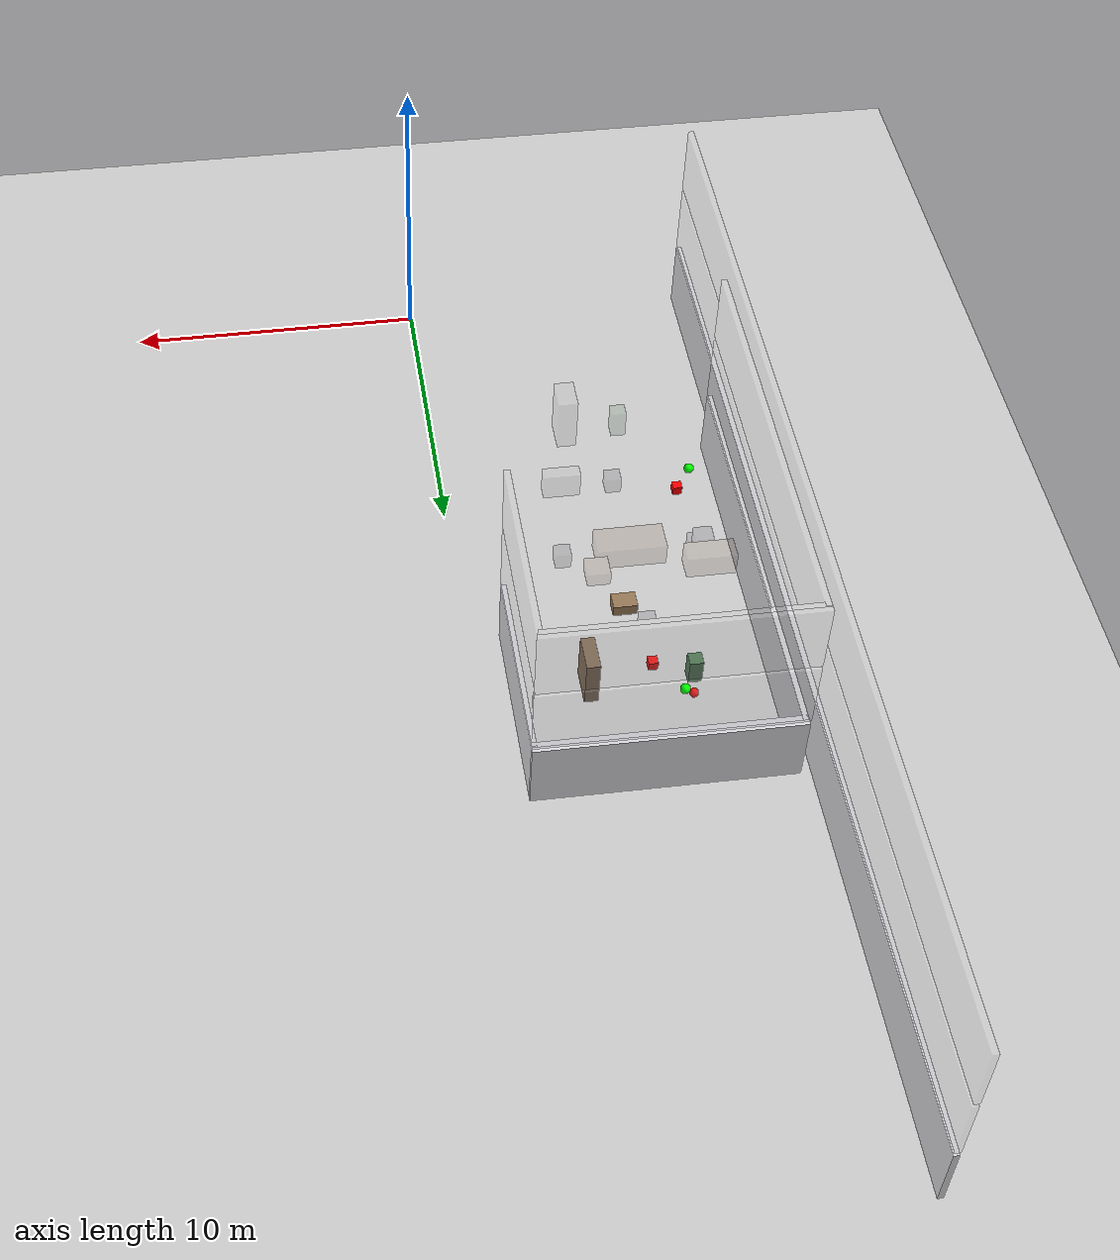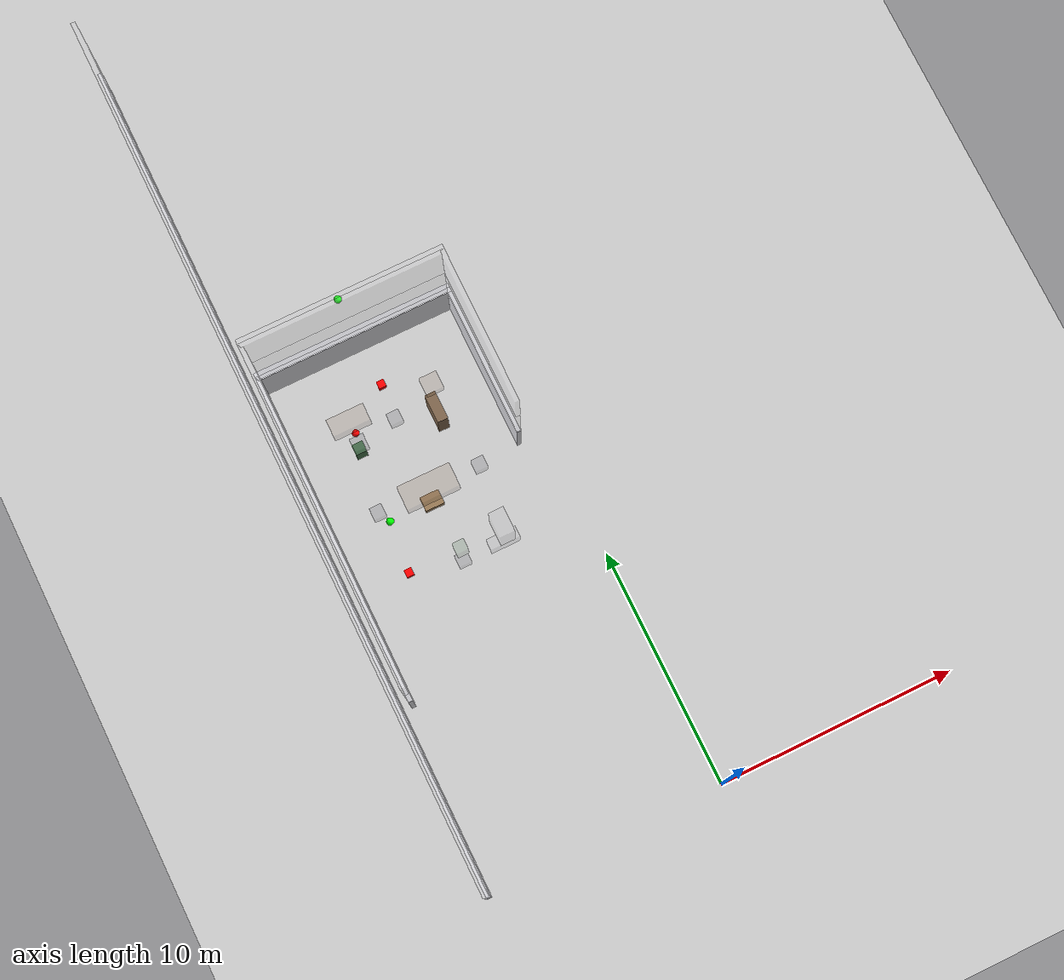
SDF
<sdf version="1.7">
 <world name="generated_world">
  <include><uri>model://sun</uri></include>
  <include><uri>model://ground_plane</uri></include>
  <model name="generated_building">
   <static>true</static>
   <link name="exterior_west_floor_0">
    <pose>-9.9100 18.0000 1.2250 0.0000 0.0000 0.0000</pose>
    <collision name="exterior_west_floor_0_collision">
     <geometry><box><size>0.1800 36.0000 2.4500</size></box></geometry>
    </collision>
    <visual name="exterior_west_floor_0_visual">
     <geometry><box><size>0.1800 36.0000 2.4500</size></box></geometry>
     <material><ambient>0.86 0.86 0.88 1</ambient><diffuse>0.86 0.86 0.88 1</diffuse></material>
    </visual>
    <gravity>false</gravity>
   </link>
   <link name="floor_0_room_0_corridor_wall_upper">
    <pose>-1.1900 18.6725 1.2250 0.0000 0.0000 0.0000</pose>
    <collision name="floor_0_room_0_corridor_wall_upper_collision">
     <geometry><box><size>0.1800 6.4150 2.4500</size></box></geometry>
    </collision>
    <visual name="floor_0_room_0_corridor_wall_upper_visual">
     <geometry><box><size>0.1800 6.4150 2.4500</size></box></geometry>
     <material><ambient>0.86 0.86 0.88 1</ambient><diffuse>0.86 0.86 0.88 1</diffuse></material>
    </visual>
    <gravity>false</gravity>
   </link>
   <link name="floor_0_room_0_west_wall">
    <pose>-9.4100 14.8650 1.2250 0.0000 0.0000 0.0000</pose>
    <collision name="floor_0_room_0_west_wall_collision">
     <geometry><box><size>0.1800 14.0300 2.4500</size></box></geometry>
    </collision>
    <visual name="floor_0_room_0_west_wall_visual">
     <geometry><box><size>0.1800 14.0300 2.4500</size></box></geometry>
     <material><ambient>0.86 0.86 0.88 1</ambient><diffuse>0.86 0.86 0.88 1</diffuse></material>
    </visual>
    <gravity>false</gravity>
   </link>
   <link name="floor_0_room_0_north_wall">
    <pose>-5.3000 21.7900 1.2250 0.0000 0.0000 0.0000</pose>
    <collision name="floor_0_room_0_north_wall_collision">
     <geometry><box><size>8.4000 0.1800 2.4500</size></box></geometry>
    </collision>
    <visual name="floor_0_room_0_north_wall_visual">
     <geometry><box><size>8.4000 0.1800 2.4500</size></box></geometry>
     <material><ambient>0.86 0.86 0.88 1</ambient><diffuse>0.86 0.86 0.88 1</diffuse></material>
    </visual>
    <gravity>false</gravity>
   </link>
   <link name="floor_0_room_2_south_wall">
    <pose>-5.3000 21.9700 1.2250 0.0000 0.0000 0.0000</pose>
    <collision name="floor_0_room_2_south_wall_collision">
     <geometry><box><size>8.4000 0.1800 2.4500</size></box></geometry>
    </collision>
    <visual name="floor_0_room_2_south_wall_visual">
     <geometry><box><size>8.4000 0.1800 2.4500</size></box></geometry>
     <material><ambient>0.86 0.86 0.88 1</ambient><diffuse>0.86 0.86 0.88 1</diffuse></material>
    </visual>
    <gravity>false</gravity>
   </link>
   <link name="floor_0_room_0_coffee_table">
    <pose>-5.3000 14.8650 0.2500 0.0000 0.0000 0.0000</pose>
    <collision name="floor_0_room_0_coffee_table_collision">
     <geometry><box><size>0.8000 0.6000 0.4000</size></box></geometry>
    </collision>
    <visual name="floor_0_room_0_coffee_table_visual">
     <geometry><box><size>0.8000 0.6000 0.4000</size></box></geometry>
     <material><ambient>0.60 0.48 0.34 1</ambient><diffuse>0.60 0.48 0.34 1</diffuse></material>
    </visual>
    <gravity>false</gravity>
   </link>
   <link name="floor_0_room_0_bookshelf">
    <pose>-3.6000 17.9225 0.8500 0.0000 0.0000 0.0000</pose>
    <collision name="floor_0_room_0_bookshelf_collision">
     <geometry><box><size>0.4500 1.2000 1.7000</size></box></geometry>
    </collision>
    <visual name="floor_0_room_0_bookshelf_visual">
     <geometry><box><size>0.4500 1.2000 1.7000</size></box></geometry>
     <material><ambient>0.50 0.40 0.30 1</ambient><diffuse>0.50 0.40 0.30 1</diffuse></material>
    </visual>
    <gravity>false</gravity>
   </link>
   <link name="floor_0_room_0_planter">
    <pose>-7.0000 17.9225 0.4500 0.0000 0.0000 0.0000</pose>
    <collision name="floor_0_room_0_planter_collision">
     <geometry><box><size>0.4500 0.4500 0.9000</size></box></geometry>
    </collision>
    <visual name="floor_0_room_0_planter_visual">
     <geometry><box><size>0.4500 0.4500 0.9000</size></box></geometry>
     <material><ambient>0.28 0.46 0.30 1</ambient><diffuse>0.28 0.46 0.30 1</diffuse></material>
    </visual>
    <gravity>false</gravity>
   </link>
   <link name="exterior_west_floor_1">
    <pose>-9.9100 18.0000 3.8250 0.0000 0.0000 0.0000</pose>
    <collision name="exterior_west_floor_1_collision">
     <geometry><box><size>0.1800 36.0000 2.4500</size></box></geometry>
    </collision>
    <visual name="exterior_west_floor_1_visual">
     <geometry><box><size>0.1800 36.0000 2.4500</size></box></geometry>
     <material><ambient>0.86 0.86 0.88 1</ambient><diffuse>0.86 0.86 0.88 1</diffuse></material>
     <transparency>0.80</transparency>
    </visual>
    <gravity>false</gravity>
   </link>
   <link name="floor_1_room_0_corridor_wall_upper">
    <pose>-1.1900 18.6725 3.8250 0.0000 0.0000 0.0000</pose>
    <collision name="floor_1_room_0_corridor_wall_upper_collision">
     <geometry><box><size>0.1800 6.4150 2.4500</size></box></geometry>
    </collision>
    <visual name="floor_1_room_0_corridor_wall_upper_visual">
     <geometry><box><size>0.1800 6.4150 2.4500</size></box></geometry>
     <material><ambient>0.86 0.86 0.88 1</ambient><diffuse>0.86 0.86 0.88 1</diffuse></material>
     <transparency>0.80</transparency>
    </visual>
    <gravity>false</gravity>
   </link>
   <link name="floor_1_room_0_west_wall">
    <pose>-9.4100 14.8650 3.8250 0.0000 0.0000 0.0000</pose>
    <collision name="floor_1_room_0_west_wall_collision">
     <geometry><box><size>0.1800 14.0300 2.4500</size></box></geometry>
    </collision>
    <visual name="floor_1_room_0_west_wall_visual">
     <geometry><box><size>0.1800 14.0300 2.4500</size></box></geometry>
     <material><ambient>0.86 0.86 0.88 1</ambient><diffuse>0.86 0.86 0.88 1</diffuse></material>
     <transparency>0.80</transparency>
    </visual>
    <gravity>false</gravity>
   </link>
   <link name="floor_1_room_0_north_wall">
    <pose>-5.3000 21.7900 3.8250 0.0000 0.0000 0.0000</pose>
    <collision name="floor_1_room_0_north_wall_collision">
     <geometry><box><size>8.4000 0.1800 2.4500</size></box></geometry>
    </collision>
    <visual name="floor_1_room_0_north_wall_visual">
     <geometry><box><size>8.4000 0.1800 2.4500</size></box></geometry>
     <material><ambient>0.86 0.86 0.88 1</ambient><diffuse>0.86 0.86 0.88 1</diffuse></material>
     <transparency>0.80</transparency>
    </visual>
    <gravity>false</gravity>
   </link>
   <link name="floor_1_room_2_south_wall">
    <pose>-5.3000 21.9700 3.8250 0.0000 0.0000 0.0000</pose>
    <collision name="floor_1_room_2_south_wall_collision">
     <geometry><box><size>8.4000 0.1800 2.4500</size></box></geometry>
    </collision>
    <visual name="floor_1_room_2_south_wall_visual">
     <geometry><box><size>8.4000 0.1800 2.4500</size></box></geometry>
     <material><ambient>0.86 0.86 0.88 1</ambient><diffuse>0.86 0.86 0.88 1</diffuse></material>
     <transparency>0.80</transparency>
    </visual>
    <gravity>false</gravity>
   </link>
   <link name="floor_1_room_0_table">
    <pose>-5.3000 14.8650 3.0500 0.0000 0.0000 0.0000</pose>
    <collision name="floor_1_room_0_table_collision">
     <geometry><box><size>2.2000 1.0000 0.7500</size></box></geometry>
    </collision>
    <visual name="floor_1_room_0_table_visual">
     <geometry><box><size>2.2000 1.0000 0.7500</size></box></geometry>
     <material><ambient>0.50 0.38 0.28 1</ambient><diffuse>0.50 0.38 0.28 1</diffuse></material>
     <transparency>0.80</transparency>
    </visual>
    <gravity>false</gravity>
   </link>
   <link name="floor_1_room_0_chair_north">
    <pose>-5.3000 17.9225 2.8800 0.0000 0.0000 0.0000</pose>
    <collision name="floor_1_room_0_chair_north_collision">
     <geometry><box><size>0.5000 0.5000 0.5500</size></box></geometry>
    </collision>
    <visual name="floor_1_room_0_chair_north_visual">
     <geometry><box><size>0.5000 0.5000 0.5500</size></box></geometry>
     <material><ambient>0.30 0.30 0.34 1</ambient><diffuse>0.30 0.30 0.34 1</diffuse></material>
     <transparency>0.80</transparency>
    </visual>
    <gravity>false</gravity>
   </link>
   <link name="floor_1_room_0_chair_south">
    <pose>-5.3000 11.8075 2.8800 0.0000 0.0000 0.0000</pose>
    <collision name="floor_1_room_0_chair_south_collision">
     <geometry><box><size>0.5000 0.5000 0.5500</size></box></geometry>
    </collision>
    <visual name="floor_1_room_0_chair_south_visual">
     <geometry><box><size>0.5000 0.5000 0.5500</size></box></geometry>
     <material><ambient>0.30 0.30 0.34 1</ambient><diffuse>0.30 0.30 0.34 1</diffuse></material>
     <transparency>0.80</transparency>
    </visual>
    <gravity>false</gravity>
   </link>
   <link name="floor_1_room_0_chair_west">
    <pose>-7.4500 14.8650 2.8800 0.0000 0.0000 1.5700</pose>
    <collision name="floor_1_room_0_chair_west_collision">
     <geometry><box><size>0.5000 0.5000 0.5500</size></box></geometry>
    </collision>
    <visual name="floor_1_room_0_chair_west_visual">
     <geometry><box><size>0.5000 0.5000 0.5500</size></box></geometry>
     <material><ambient>0.30 0.30 0.34 1</ambient><diffuse>0.30 0.30 0.34 1</diffuse></material>
     <transparency>0.80</transparency>
    </visual>
    <gravity>false</gravity>
   </link>
   <link name="floor_1_room_0_chair_east">
    <pose>-3.1500 14.8650 2.8800 0.0000 0.0000 1.5700</pose>
    <collision name="floor_1_room_0_chair_east_collision">
     <geometry><box><size>0.5000 0.5000 0.5500</size></box></geometry>
    </collision>
    <visual name="floor_1_room_0_chair_east_visual">
     <geometry><box><size>0.5000 0.5000 0.5500</size></box></geometry>
     <material><ambient>0.30 0.30 0.34 1</ambient><diffuse>0.30 0.30 0.34 1</diffuse></material>
     <transparency>0.80</transparency>
    </visual>
    <gravity>false</gravity>
   </link>
   <link name="floor_1_room_0_credenza">
    <pose>-3.6000 11.8075 3.0500 0.0000 0.0000 0.0000</pose>
    <collision name="floor_1_room_0_credenza_collision">
     <geometry><box><size>1.2000 0.4500 0.9000</size></box></geometry>
    </collision>
    <visual name="floor_1_room_0_credenza_visual">
     <geometry><box><size>1.2000 0.4500 0.9000</size></box></geometry>
     <material><ambient>0.72 0.72 0.74 1</ambient><diffuse>0.72 0.72 0.74 1</diffuse></material>
     <transparency>0.80</transparency>
    </visual>
    <gravity>false</gravity>
   </link>
   <link name="exterior_west_floor_2">
    <pose>-9.9100 18.0000 6.4250 0.0000 0.0000 0.0000</pose>
    <collision name="exterior_west_floor_2_collision">
     <geometry><box><size>0.1800 36.0000 2.4500</size></box></geometry>
    </collision>
    <visual name="exterior_west_floor_2_visual">
     <geometry><box><size>0.1800 36.0000 2.4500</size></box></geometry>
     <material><ambient>0.86 0.86 0.88 1</ambient><diffuse>0.86 0.86 0.88 1</diffuse></material>
     <transparency>0.80</transparency>
    </visual>
    <gravity>false</gravity>
   </link>
   <link name="floor_2_room_0_corridor_wall_upper">
    <pose>-1.1900 18.6725 6.4250 0.0000 0.0000 0.0000</pose>
    <collision name="floor_2_room_0_corridor_wall_upper_collision">
     <geometry><box><size>0.1800 6.4150 2.4500</size></box></geometry>
    </collision>
    <visual name="floor_2_room_0_corridor_wall_upper_visual">
     <geometry><box><size>0.1800 6.4150 2.4500</size></box></geometry>
     <material><ambient>0.86 0.86 0.88 1</ambient><diffuse>0.86 0.86 0.88 1</diffuse></material>
     <transparency>0.80</transparency>
    </visual>
    <gravity>false</gravity>
   </link>
   <link name="floor_2_room_0_west_wall">
    <pose>-9.4100 14.8650 6.4250 0.0000 0.0000 0.0000</pose>
    <collision name="floor_2_room_0_west_wall_collision">
     <geometry><box><size>0.1800 14.0300 2.4500</size></box></geometry>
    </collision>
    <visual name="floor_2_room_0_west_wall_visual">
     <geometry><box><size>0.1800 14.0300 2.4500</size></box></geometry>
     <material><ambient>0.86 0.86 0.88 1</ambient><diffuse>0.86 0.86 0.88 1</diffuse></material>
     <transparency>0.80</transparency>
    </visual>
    <gravity>false</gravity>
   </link>
   <link name="floor_2_room_0_north_wall">
    <pose>-5.3000 21.7900 6.4250 0.0000 0.0000 0.0000</pose>
    <collision name="floor_2_room_0_north_wall_collision">
     <geometry><box><size>8.4000 0.1800 2.4500</size></box></geometry>
    </collision>
    <visual name="floor_2_room_0_north_wall_visual">
     <geometry><box><size>8.4000 0.1800 2.4500</size></box></geometry>
     <material><ambient>0.86 0.86 0.88 1</ambient><diffuse>0.86 0.86 0.88 1</diffuse></material>
     <transparency>0.80</transparency>
    </visual>
    <gravity>false</gravity>
   </link>
   <link name="floor_2_room_2_south_wall">
    <pose>-5.3000 21.9700 6.4250 0.0000 0.0000 0.0000</pose>
    <collision name="floor_2_room_2_south_wall_collision">
     <geometry><box><size>8.4000 0.1800 2.4500</size></box></geometry>
    </collision>
    <visual name="floor_2_room_2_south_wall_visual">
     <geometry><box><size>8.4000 0.1800 2.4500</size></box></geometry>
     <material><ambient>0.86 0.86 0.88 1</ambient><diffuse>0.86 0.86 0.88 1</diffuse></material>
     <transparency>0.80</transparency>
    </visual>
    <gravity>false</gravity>
   </link>
   <link name="floor_2_room_0_desk">
    <pose>-7.0000 17.9225 5.6500 0.0000 0.0000 0.0000</pose>
    <collision name="floor_2_room_0_desk_collision">
     <geometry><box><size>1.5000 0.7000 0.7500</size></box></geometry>
    </collision>
    <visual name="floor_2_room_0_desk_visual">
     <geometry><box><size>1.5000 0.7000 0.7500</size></box></geometry>
     <material><ambient>0.54 0.43 0.34 1</ambient><diffuse>0.54 0.43 0.34 1</diffuse></material>
     <transparency>0.80</transparency>
    </visual>
    <gravity>false</gravity>
   </link>
   <link name="floor_2_room_0_chair">
    <pose>-7.0000 17.0225 5.4800 0.0000 0.0000 0.0000</pose>
    <collision name="floor_2_room_0_chair_collision">
     <geometry><box><size>0.5500 0.5500 0.5500</size></box></geometry>
    </collision>
    <visual name="floor_2_room_0_chair_visual">
     <geometry><box><size>0.5500 0.5500 0.5500</size></box></geometry>
     <material><ambient>0.30 0.30 0.34 1</ambient><diffuse>0.30 0.30 0.34 1</diffuse></material>
     <transparency>0.80</transparency>
    </visual>
    <gravity>false</gravity>
   </link>
   <link name="floor_2_room_0_cabinet">
    <pose>-3.6000 11.8075 6.1000 0.0000 0.0000 0.0000</pose>
    <collision name="floor_2_room_0_cabinet_collision">
     <geometry><box><size>0.6000 1.0000 1.8000</size></box></geometry>
    </collision>
    <visual name="floor_2_room_0_cabinet_visual">
     <geometry><box><size>0.6000 1.0000 1.8000</size></box></geometry>
     <material><ambient>0.72 0.72 0.74 1</ambient><diffuse>0.72 0.72 0.74 1</diffuse></material>
     <transparency>0.80</transparency>
    </visual>
    <gravity>false</gravity>
   </link>
   <link name="floor_2_room_0_side_table">
    <pose>-3.6000 17.9225 5.5200 0.0000 0.0000 0.0000</pose>
    <collision name="floor_2_room_0_side_table_collision">
     <geometry><box><size>0.7000 0.7000 0.4500</size></box></geometry>
    </collision>
    <visual name="floor_2_room_0_side_table_visual">
     <geometry><box><size>0.7000 0.7000 0.4500</size></box></geometry>
     <material><ambient>0.52 0.42 0.33 1</ambient><diffuse>0.52 0.42 0.33 1</diffuse></material>
     <transparency>0.80</transparency>
    </visual>
    <gravity>false</gravity>
   </link>
   <link name="floor_2_room_0_planter">
    <pose>-5.3000 11.8075 5.6500 0.0000 0.0000 0.0000</pose>
    <collision name="floor_2_room_0_planter_collision">
     <geometry><box><size>0.4500 0.4500 0.9000</size></box></geometry>
    </collision>
    <visual name="floor_2_room_0_planter_visual">
     <geometry><box><size>0.4500 0.4500 0.9000</size></box></geometry>
     <material><ambient>0.28 0.46 0.30 1</ambient><diffuse>0.28 0.46 0.30 1</diffuse></material>
     <transparency>0.80</transparency>
    </visual>
    <gravity>false</gravity>
   </link>
  </model>
  <model name="danger_red_sphere_00">
   <static>true</static>
   <pose>-6.857779 18.695487 0.150000 0.000000 0.000000 0.000000</pose>
   <link name="link">
    <collision name="collision"><geometry><sphere><radius>0.150</radius></sphere></geometry></collision>
    <visual name="visual">
     <geometry><sphere><radius>0.150</radius></sphere></geometry>
     <material><ambient>1.0 0.0 0.0 1.0</ambient><diffuse>1.0 0.0 0.0 1.0</diffuse></material>
    </visual>
   </link>
  </model>
  <model name="distractor_green_sphere_01">
   <static>true</static>
   <pose>-7.205160 13.902174 5.350000 0.000000 0.000000 0.000000</pose>
   <link name="link">
    <collision name="collision"><geometry><sphere><radius>0.150</radius></sphere></geometry></collision>
    <visual name="visual">
     <geometry><sphere><radius>0.150</radius></sphere></geometry>
     <material><ambient>0.0 1.0 0.0 1.0</ambient><diffuse>0.0 1.0 0.0 1.0</diffuse></material>
    </visual>
   </link>
  </model>
  <model name="distractor_green_sphere_02">
   <static>true</static>
   <pose>-5.365074 22.490912 5.350000 0.000000 0.000000 0.000000</pose>
   <link name="link">
    <collision name="collision"><geometry><sphere><radius>0.150</radius></sphere></geometry></collision>
    <visual name="visual">
     <geometry><sphere><radius>0.150</radius></sphere></geometry>
     <material><ambient>0.0 1.0 0.0 1.0</ambient><diffuse>0.0 1.0 0.0 1.0</diffuse></material>
    </visual>
   </link>
  </model>
  <model name="distractor_red_box_05">
   <static>true</static>
   <pose>-5.195267 19.395807 2.750000 0.000000 0.000000 0.000000</pose>
   <link name="link">
    <collision name="collision">
     <geometry><box><size>0.300000 0.300000 0.300000</size></box></geometry>
    </collision>
    <visual name="visual">
     <geometry><box><size>0.300000 0.300000 0.300000</size></box></geometry>
     <material><ambient>1.0 0.0 0.0 1.0</ambient><diffuse>1.0 0.0 0.0 1.0</diffuse></material>
    </visual>
   </link>
  </model>
  <model name="distractor_red_box_07">
   <static>true</static>
   <pose>-7.362236 12.265231 2.750000 0.000000 0.000000 0.000000</pose>
   <link name="link">
    <collision name="collision">
     <geometry><box><size>0.300000 0.300000 0.300000</size></box></geometry>
    </collision>
    <visual name="visual">
     <geometry><box><size>0.300000 0.300000 0.300000</size></box></geometry>
     <material><ambient>1.0 0.0 0.0 1.0</ambient><diffuse>1.0 0.0 0.0 1.0</diffuse></material>
    </visual>
   </link>
  </model>
 </world>
</sdf>
